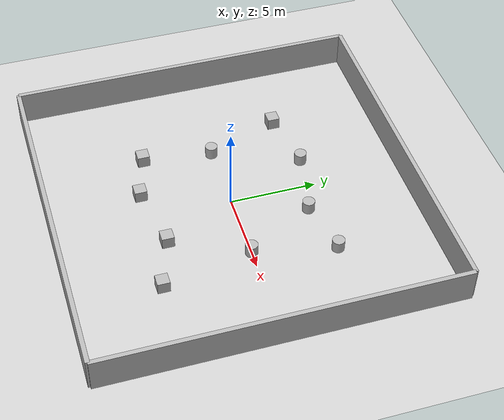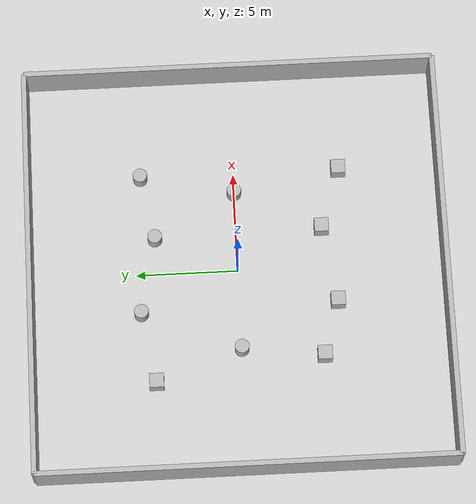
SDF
<sdf version="1.9">
 <world name="test_open_20x20">
  <physics name="1ms" type="ignored">
   <max_step_size>0.001</max_step_size>
   <real_time_factor>1</real_time_factor>
   <real_time_update_rate>1000</real_time_update_rate>
  </physics>
  <plugin name="ignition::gazebo::systems::Physics" filename="ignition-gazebo-physics-system"/>
  <plugin name="ignition::gazebo::systems::UserCommands" filename="ignition-gazebo-user-commands-system"/>
  <plugin name="ignition::gazebo::systems::SceneBroadcaster" filename="ignition-gazebo-scene-broadcaster-system"/>
  <plugin name="ignition::gazebo::systems::Contact" filename="ignition-gazebo-contact-system"/>
  <light name="sun" type="directional">
   <pose>0 0 10 0 0 0</pose>
   <intensity>1.1</intensity>
   <direction>-0.5 0.1 -0.9</direction>
   <diffuse>0.9 0.9 0.9 1</diffuse>
   <specular>0.2 0.2 0.2 1</specular>
  </light>
  <model name="ground_plane">
   <static>true</static>
   <link name="link">
    <collision name="collision">
     <geometry><plane><normal>0 0 1</normal><size>100.0 100.0</size></plane></geometry>
    </collision>
    <visual name="visual">
     <geometry><plane><normal>0 0 1</normal><size>100.0 100.0</size></plane></geometry>
     <material><ambient>0.82 0.82 0.82 1</ambient><diffuse>0.82 0.82 0.82 1</diffuse></material>
    </visual>
   </link>
  </model>
  <model name="border">
   <pose>0 0 1 0 0 0</pose>
   <static>true</static>
   <link name="wall_west">
    <pose>-10.12 0 0 0 0 0</pose>
    <collision name="col"><geometry><box><size>0.25 20.25 2.00</size></box></geometry></collision>
    <visual name="vis"><geometry><box><size>0.25 20.25 2.00</size></box></geometry></visual>
   </link>
   <link name="wall_east">
    <pose>10.12 0 0 0 0 0</pose>
    <collision name="col"><geometry><box><size>0.25 20.25 2.00</size></box></geometry></collision>
    <visual name="vis"><geometry><box><size>0.25 20.25 2.00</size></box></geometry></visual>
   </link>
   <link name="wall_north">
    <pose>0 10.12 0 0 0 0</pose>
    <collision name="col"><geometry><box><size>20.25 0.25 2.00</size></box></geometry></collision>
    <visual name="vis"><geometry><box><size>20.25 0.25 2.00</size></box></geometry></visual>
   </link>
   <link name="wall_south">
    <pose>0 -10.12 0 0 0 0</pose>
    <collision name="col"><geometry><box><size>20.25 0.25 2.00</size></box></geometry></collision>
    <visual name="vis"><geometry><box><size>20.25 0.25 2.00</size></box></geometry></visual>
   </link>
  </model>
  <model name="static_box_0">
   <pose>-4.50 -4.00 0.35 0 0 0</pose>
   <static>true</static>
   <link name="link">
    <visual name="vis"><geometry><box><size>0.70 0.70 0.70</size></box></geometry></visual>
    <collision name="col"><geometry><box><size>0.70 0.70 0.70</size></box></geometry></collision>
   </link>
  </model>
  <model name="static_box_1">
   <pose>-1.80 -4.80 0.35 0 0 0</pose>
   <static>true</static>
   <link name="link">
    <visual name="vis"><geometry><box><size>0.70 0.70 0.70</size></box></geometry></visual>
    <collision name="col"><geometry><box><size>0.70 0.70 0.70</size></box></geometry></collision>
   </link>
  </model>
  <model name="static_box_2">
   <pose>2.00 -4.20 0.35 0 0 0</pose>
   <static>true</static>
   <link name="link">
    <visual name="vis"><geometry><box><size>0.70 0.70 0.70</size></box></geometry></visual>
    <collision name="col"><geometry><box><size>0.70 0.70 0.70</size></box></geometry></collision>
   </link>
  </model>
  <model name="static_box_3">
   <pose>5.00 -5.20 0.35 0 0 0</pose>
   <static>true</static>
   <link name="link">
    <visual name="vis"><geometry><box><size>0.70 0.70 0.70</size></box></geometry></visual>
    <collision name="col"><geometry><box><size>0.70 0.70 0.70</size></box></geometry></collision>
   </link>
  </model>
  <model name="static_box_4">
   <pose>-5.50 4.20 0.35 0 0 0</pose>
   <static>true</static>
   <link name="link">
    <visual name="vis"><geometry><box><size>0.70 0.70 0.70</size></box></geometry></visual>
    <collision name="col"><geometry><box><size>0.70 0.70 0.70</size></box></geometry></collision>
   </link>
  </model>
  <model name="static_cyl_0">
   <pose>-2.00 4.80 0.35 0 0 0</pose>
   <static>true</static>
   <link name="link">
    <visual name="vis">
     <geometry><cylinder><radius>0.35</radius><length>0.70</length></cylinder></geometry>
    </visual>
    <collision name="col">
     <geometry><cylinder><radius>0.35</radius><length>0.70</length></cylinder></geometry>
    </collision>
   </link>
  </model>
  <model name="static_cyl_1">
   <pose>1.80 4.00 0.35 0 0 0</pose>
   <static>true</static>
   <link name="link">
    <visual name="vis">
     <geometry><cylinder><radius>0.35</radius><length>0.70</length></cylinder></geometry>
    </visual>
    <collision name="col">
     <geometry><cylinder><radius>0.35</radius><length>0.70</length></cylinder></geometry>
    </collision>
   </link>
  </model>
  <model name="static_cyl_2">
   <pose>5.00 4.60 0.35 0 0 0</pose>
   <static>true</static>
   <link name="link">
    <visual name="vis">
     <geometry><cylinder><radius>0.35</radius><length>0.70</length></cylinder></geometry>
    </visual>
    <collision name="col">
     <geometry><cylinder><radius>0.35</radius><length>0.70</length></cylinder></geometry>
    </collision>
   </link>
  </model>
  <model name="static_cyl_3">
   <pose>-4.00 0.00 0.35 0 0 0</pose>
   <static>true</static>
   <link name="link">
    <visual name="vis">
     <geometry><cylinder><radius>0.35</radius><length>0.70</length></cylinder></geometry>
    </visual>
    <collision name="col">
     <geometry><cylinder><radius>0.35</radius><length>0.70</length></cylinder></geometry>
    </collision>
   </link>
  </model>
  <model name="static_cyl_4">
   <pose>4.00 0.00 0.35 0 0 0</pose>
   <static>true</static>
   <link name="link">
    <visual name="vis">
     <geometry><cylinder><radius>0.35</radius><length>0.70</length></cylinder></geometry>
    </visual>
    <collision name="col">
     <geometry><cylinder><radius>0.35</radius><length>0.70</length></cylinder></geometry>
    </collision>
   </link>
  </model>
 </world>
</sdf>
